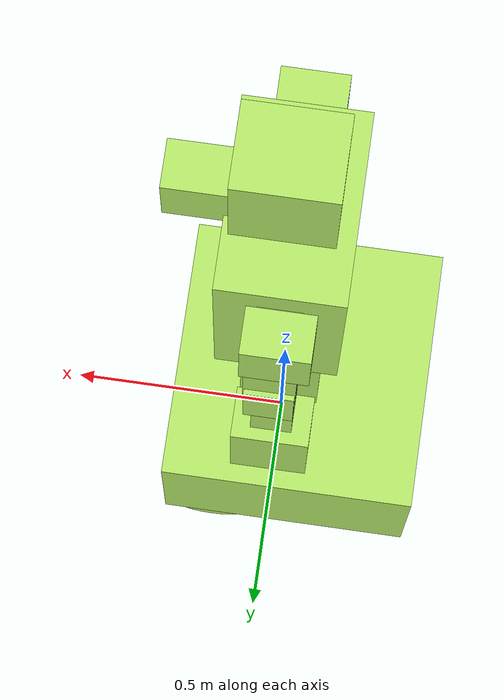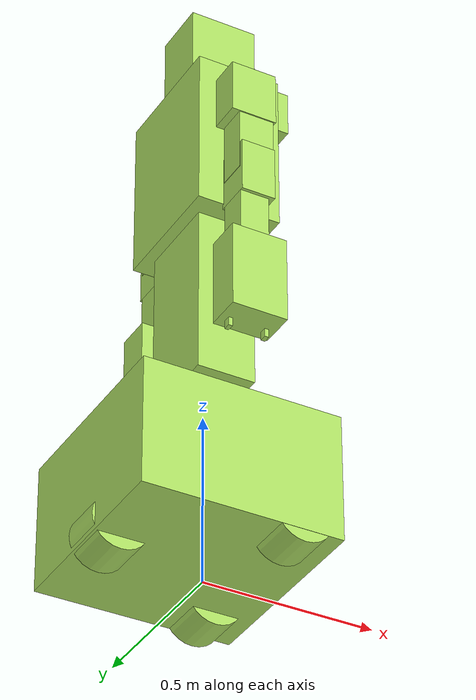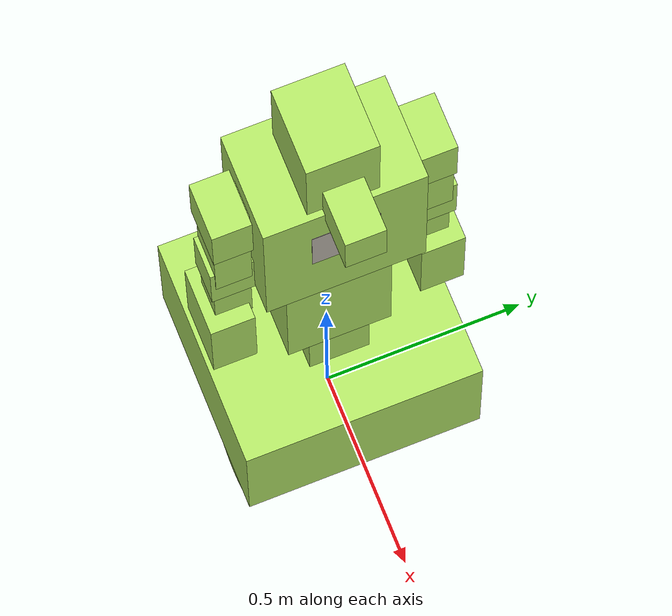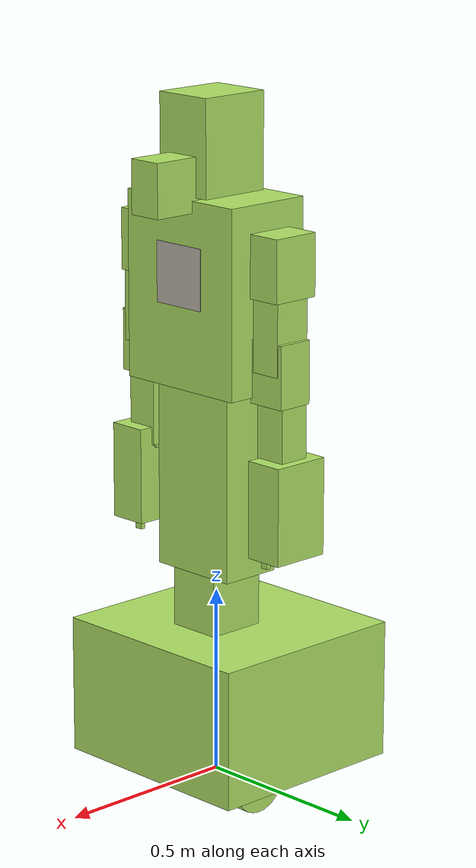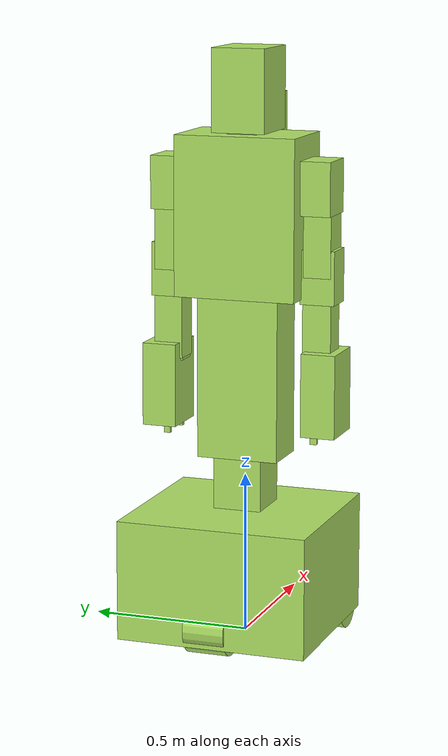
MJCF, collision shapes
<?xml version="1.0"?>
<!-- Generated by make_model.py from Rviz/src/franzi_description/urdf/wheel_robot_4.0.urdf - do not edit. -->
<mujoco model="franzi">
  <compiler angle="radian" balanceinertia="true" autolimits="true"
            texturedir="assets"
            meshdir="../../Rviz/src/franzi_description/meshes"/>
  <option timestep="0.002" integrator="implicitfast"/>

  <asset>
    <material name="franzi_white" rgba="0.85 0.86 0.88 1" specular="0.5"
              shininess="0.6"/>
    <material name="franzi_joint" rgba="0.09 0.095 0.105 1" specular="0.3"
              shininess="0.4"/>
    <material name="franzi_visor" rgba="0.02 0.02 0.025 1" specular="0.8"
              shininess="0.9"/>
    <material name="franzi_tire" rgba="0.04 0.04 0.045 1" specular="0.05"
              shininess="0.05"/>
    <texture name="fmc3_logo" type="cube" file="fmc3_logo.png"/>
    <material name="fmc3_logo" texture="fmc3_logo" specular="0.3"
              shininess="0.4"/>
    <mesh name="base_link" file="base_link.STL"/>
    <mesh name="calf_Link" file="calf_Link.STL"/>
    <mesh name="thigh_Link" file="thigh_Link.STL"/>
    <mesh name="waist_Link" file="waist_Link.STL"/>
    <mesh name="torso_Link" file="torso_Link.STL"/>
    <mesh name="head_yaw_Link" file="head_yaw_Link.STL"/>
    <mesh name="head_pitch_Link" file="head_pitch_Link.STL"/>
    <mesh name="head_d435_Link" file="head_d435_Link.STL"/>
    <mesh name="left_shoulder_pitch_Link" file="left_shoulder_pitch_Link.STL"/>
    <mesh name="left_shoulder_roll_Link" file="left_shoulder_roll_Link.STL"/>
    <mesh name="left_shoulder_yaw_Link" file="left_shoulder_yaw_Link.STL"/>
    <mesh name="left_elbow_pitch_Link" file="left_elbow_pitch_Link.STL"/>
    <mesh name="left_wrist_yaw_Link" file="left_wrist_yaw_Link.STL"/>
    <mesh name="left_wrist_pitch_Link" file="left_wrist_pitch_Link.STL"/>
    <mesh name="left_wrist_roll_Link" file="left_wrist_roll_Link.STL"/>
    <mesh name="leftfinger1_Link" file="leftfinger1_Link.STL"/>
    <mesh name="leftfinger2_Link" file="leftfinger2_Link.STL"/>
    <mesh name="left_wrist_d405_Link" file="left_wrist_d405_Link.STL"/>
    <mesh name="right_shoulder_pitch_Link" file="right_shoulder_pitch_Link.STL"/>
    <mesh name="right_shoulder_roll_Link" file="right_shoulder_roll_Link.STL"/>
    <mesh name="right_shoulder_yaw_Link" file="right_shoulder_yaw_Link.STL"/>
    <mesh name="right_elbow_pitch_Link" file="right_elbow_pitch_Link.STL"/>
    <mesh name="right_wrist_yaw_Link" file="right_wrist_yaw_Link.STL"/>
    <mesh name="right_wrist_pitch_Link" file="right_wrist_pitch_Link.STL"/>
    <mesh name="right_wrist_roll_Link" file="right_wrist_roll_Link.STL"/>
    <mesh name="rightfinger1_Link" file="rightfinger1_Link.STL"/>
    <mesh name="rightfinger2_Link" file="rightfinger2_Link.STL"/>
    <mesh name="right_wrist_d405_Link" file="right_wrist_d405_Link.STL"/>
    <mesh name="body_d435_Link" file="body_d435_Link.STL"/>
    <mesh name="left_front_steering_Link" file="left_front_steering_Link.STL"/>
    <mesh name="left_front_wheel_Link" file="left_front_wheel_Link.STL"/>
    <mesh name="right_front_steering_Link" file="right_front_steering_Link.STL"/>
    <mesh name="right_front_wheel_Link" file="right_front_wheel_Link.STL"/>
    <mesh name="rear_steering_Link" file="rear_steering_Link.STL"/>
    <mesh name="rear_wheel_Link" file="rear_wheel_Link.STL"/>
    <mesh name="MID360_Link" file="MID360_Link.STL"/>
    <mesh name="2Dlidar_Link" file="2Dlidar_Link.STL"/>
  </asset>

  <default>
    <default class="franzi">
      <geom contype="1" conaffinity="2" friction="0.9 0.005 0.0001"/>
      <joint damping="2" armature="0.1"/>
      <default class="visual">
        <geom contype="0" conaffinity="0" group="1"/>
      </default>
      <default class="collision">
        <geom group="3" rgba="0.7 0.9 0.4 0.4"/>
      </default>
      <default class="servo">
        <joint damping="5"/>
      </default>
      <default class="wheel">
        <joint damping="0.5" armature="0.02"/>
        <geom friction="1.2 0.01 0.0001" group="3" rgba="0.7 0.9 0.4 0.4"/>
      </default>
    </default>
  </default>

  <worldbody>
    <body name="base_link" pos="0 0 0.0872648" childclass="franzi">
      <freejoint name="base"/>
      <inertial pos="-0.039196 0.0031755 0.036044" mass="61.5" fullinertia="1.8193 1.3486 2.6901 0.042006 0.16837 0.024339"/>
      <geom name="base_link_visual" type="mesh" mesh="base_link" material="franzi_white" class="visual"/>
      <geom name="base_link" type="box" size="0.285523 0.297299 0.185476" pos="-0.0440142 9.08971e-06 0.132877" class="collision"/>
      <body name="calf_Link" pos="0 0 0.24785">
        <joint name="calf_pitch_joint" type="hinge" axis="0 1 0" range="-1.2566 0.52" class="servo"/>
        <inertial pos="-1.093e-05 0.0012888 0.15089" mass="16" fullinertia="0.28197 0.29762 0.084165 -1.89e-06 0.00024604 -7.346e-05"/>
        <geom name="calf_Link_visual" type="mesh" mesh="calf_Link" material="franzi_white" class="visual"/>
        <geom name="calf_Link" type="box" size="0.0815825 0.0750005 0.2245" pos="4.69387e-07 -3.241e-07 0.15" class="collision"/>
        <body name="thigh_Link" pos="0 0 0.3">
          <joint name="thigh_pitch_joint" type="hinge" axis="0 1 0" range="0 2.56" class="servo"/>
          <inertial pos="-0.0089016 0.0018681 0.18956" mass="11" fullinertia="0.24124 0.18696 0.11623 0.00021549 0.007479 0.0029216"/>
          <geom name="thigh_Link_visual" type="mesh" mesh="thigh_Link" material="franzi_white" class="visual"/>
          <geom name="thigh_Link" type="box" size="0.0847759 0.127575 0.2505" pos="0 0 0.18" class="collision"/>
          <body name="waist_Link" pos="0 0 0.35">
            <joint name="waist_pitch_joint" type="hinge" axis="0 1 0" range="-0.5235 0.5235" class="servo"/>
            <inertial pos="2.979e-05 -0.0027717 -0.0098953" mass="5" fullinertia="0.0180695 0.0231314 0.0212531 4.7e-07 8.65e-06 -0.00013516"/>
            <geom name="waist_Link_visual" type="mesh" mesh="waist_Link" material="franzi_joint" class="visual"/>
            <geom name="waist_Link" type="box" size="0.0805 0.069 0.0805" pos="1.2666e-07 0 0" class="collision"/>
            <body name="torso_Link" pos="0 0 0.0807">
              <joint name="waist_yaw_joint" type="hinge" axis="0 0 1" range="-3.14 3.14" class="servo"/>
              <inertial pos="0.01102 -2.3828e-05 0.25382" mass="18.35" fullinertia="0.70815 0.56957 0.34257 -9.08e-06 -0.030137 4.405e-05"/>
              <geom name="torso_Link_visual" type="mesh" mesh="torso_Link" material="franzi_white" class="visual"/>
              <geom name="torso_Link" type="box" size="0.124027 0.19 0.245607" pos="0.00530152 0 0.245607" class="collision"/>
              <geom name="chest_logo" type="box" size="0.0005 0.08 0.08" pos="0.131328 0 0.294728" material="fmc3_logo" class="visual"/>
              <body name="head_yaw_Link" pos="0 0 0.461">
                <joint name="head_yaw_joint" type="hinge" axis="0 0 1" range="-3.14 3.14" class="servo"/>
                <inertial pos="0.00036239 -0.0041487 0.043435" mass="0.35" fullinertia="0.00046072 0.00030358 0.00044763 3.5e-07 -6.1e-06 4.84e-06"/>
                <geom name="head_yaw_Link_visual" type="mesh" mesh="head_yaw_Link" material="franzi_joint" class="visual"/>
                <geom name="head_yaw_Link" type="box" size="0.145698 0.0474243 0.0702749" pos="0.0989599 0 0.0690749" class="collision"/>
                <body name="head_pitch_Link" pos="0 0 0.063">
                  <joint name="head_pitch_joint" type="hinge" axis="0 1 0" range="-0.5235 0.5235" class="servo"/>
                  <inertial pos="0.019983 -0.00029553 0.11286" mass="1.3" fullinertia="0.0093684 0.010546 0.0074017 8.59e-06 -0.00087158 4.178e-05"/>
                  <geom name="head_pitch_Link_visual" type="mesh" mesh="head_pitch_Link" material="franzi_visor" class="visual"/>
                  <geom name="head_pitch_Link" type="box" size="0.0997756 0.0835742 0.126485" pos="0.0161286 4.41819e-06 0.0994877" class="collision"/>
                  <site name="head_d435" pos="0.092208 0.0175 0.15141" quat="-0.573564 5.11576e-06 -0.819161 -5.11576e-06" size="0.005"/>
                  <geom name="head_d435_Link" type="mesh" mesh="head_d435_Link" pos="0.092208 0.0175 0.15141" quat="-0.573564 5.11576e-06 -0.819161 -5.11576e-06" material="franzi_joint" class="visual"/>
                </body>
              </body>
              <body name="left_shoulder_pitch_Link" pos="0 0.166 0.374">
                <joint name="left_shoulder_pitch_joint" type="hinge" axis="0 1 0" range="-3.489 2.617" class="servo"/>
                <inertial pos="0.0012801 0.062463 1.5281e-06" mass="1.56" fullinertia="0.0019971 0.0015122 0.0020202 2.095e-05 0 -3e-08"/>
                <geom name="left_shoulder_pitch_Link_visual" type="mesh" mesh="left_shoulder_pitch_Link" material="franzi_joint" class="visual"/>
                <geom name="left_shoulder_pitch_Link" type="box" size="0.04415 0.0592027 0.0444214" pos="0.00414999 0.0577027 2.92789e-05" class="collision"/>
                <body name="left_shoulder_roll_Link" pos="0 0.0725 0">
                  <joint name="left_shoulder_roll_joint" type="hinge" axis="1 0 0" range="-0.52 3.14" class="servo"/>
                  <inertial pos="0.0066589 0.00556 -0.0599" mass="1.6" fullinertia="0.0037226 0.0051554 0.0028701 -5.28e-05 0.0007199 -0.00012249"/>
                  <geom name="left_shoulder_roll_Link_visual" type="mesh" mesh="left_shoulder_roll_Link" material="franzi_white" class="visual"/>
                  <geom name="left_shoulder_roll_Link" type="box" size="0.0675 0.0465209 0.0817977" pos="1.2666e-07 -1.7643e-05 -0.0353029" class="collision"/>
                  <body name="left_shoulder_yaw_Link" pos="0 0 -0.118">
                    <joint name="left_shoulder_yaw_joint" type="hinge" axis="0 0 1" range="-2.97 2.97" class="servo"/>
                    <inertial pos="0.0052548 2.5172e-06 -0.086479" mass="1.43" fullinertia="0.0048123 0.004981 0.0013655 -7e-08 -0.00057088 -8.4e-07"/>
                    <geom name="left_shoulder_yaw_Link_visual" type="mesh" mesh="left_shoulder_yaw_Link" material="franzi_white" class="visual"/>
                    <geom name="left_shoulder_yaw_Link" type="box" size="0.0519966 0.042987 0.09975" pos="0.00800335 1.78814e-07 -0.08825" class="collision"/>
                    <body name="left_elbow_pitch_Link" pos="0.017 0 -0.145">
                      <joint name="left_elbow_pitch_joint" type="hinge" axis="0 1 0" range="-2.62 0.13" class="servo"/>
                      <inertial pos="-0.01882 0.0031393 -0.06158" mass="1.54" fullinertia="0.0029625 0.0026547 0.0017735 9.505e-05 8.653e-05 0.00029065"/>
                      <geom name="left_elbow_pitch_Link_visual" type="mesh" mesh="left_elbow_pitch_Link" material="franzi_joint" class="visual"/>
                      <geom name="left_elbow_pitch_Link" type="box" size="0.0500196 0.054 0.0827567" pos="-0.00950617 0 -0.0422433" class="collision"/>
                      <body name="left_wrist_yaw_Link" pos="-0.017 0 -0.1262">
                        <joint name="left_wrist_yaw_joint" type="hinge" axis="0 0 1" range="-2.97 2.97" class="servo"/>
                        <inertial pos="-2.128e-06 -3.3632e-05 -0.056468" mass="1" fullinertia="0.0025948 0.002418 0.00097841 -6e-08 -9.2e-07 -9.49e-06"/>
                        <geom name="left_wrist_yaw_Link_visual" type="mesh" mesh="left_wrist_yaw_Link" material="franzi_white" class="visual"/>
                        <geom name="left_wrist_yaw_Link" type="box" size="0.0425251 0.0444976 0.102382" pos="-1.45286e-07 -0.000138914 -0.0876818" class="collision"/>
                        <body name="left_wrist_pitch_Link" pos="0 0 -0.1658">
                          <joint name="left_wrist_pitch_joint" type="hinge" axis="0 1 0" range="-1.05 1.05" class="servo"/>
                          <inertial pos="-0.0010026 -0.0011829 0.011382" mass="0.76" fullinertia="0.00067253 0.00068203 0.00046634 -1e-07 8.3e-06 -2.45e-06"/>
                          <geom name="left_wrist_pitch_Link_visual" type="mesh" mesh="left_wrist_pitch_Link" material="franzi_white" class="visual"/>
                          <geom name="left_wrist_pitch_Link" type="box" size="0.0325 0.03965 0.0452421" pos="7.45058e-09 -0.00335 0.0127441" class="collision"/>
                          <body name="left_wrist_roll_Link" pos="0.0303 0 0">
                            <joint name="left_wrist_roll_joint" type="hinge" axis="1 0 0" range="-1.57 1.57" class="servo"/>
                            <inertial pos="-0.021687 0.0031118 -0.1166" mass="1.5" fullinertia="0.0080361 0.0097606 0.0028412 -3.988e-05 0.00119 0.00010473"/>
                            <geom name="left_wrist_roll_Link_visual" type="mesh" mesh="left_wrist_roll_Link" material="franzi_joint" class="visual"/>
                            <geom name="left_wrist_roll_Link" type="box" size="0.0811732 0.0535143 0.12852" pos="-0.03045 0.0167103 -0.10502" class="collision"/>
                            <body name="leftfinger1_Link" pos="-0.07795 -0.005 -0.22904">
                              <joint name="leftfinger1_joint" type="slide" axis="1 0 0" range="0 0.0475" class="servo"/>
                              <inertial pos="-0.0047305 0.00325 -0.011991" mass="0.1" fullinertia="1.104e-05 8.66e-06 4.22e-06 0 -5e-08 0"/>
                              <geom name="leftfinger1_Link_visual" type="mesh" mesh="leftfinger1_Link" material="franzi_joint" class="visual"/>
                              <geom name="leftfinger1_Link" type="box" size="0.006 0.0105 0.017" pos="-0.006 0.00325 -0.0124" class="collision"/>
                            </body>
                            <body name="leftfinger2_Link" pos="0.01705 -0.005 -0.22904">
                              <joint name="leftfinger2_joint" type="slide" axis="1 0 0" range="-0.0475 0" class="servo"/>
                              <inertial pos="0.0047305 0.00325 -0.011991" mass="0.1" fullinertia="1.104e-05 8.66e-06 4.22e-06 0 5e-08 0"/>
                              <geom name="leftfinger2_Link_visual" type="mesh" mesh="leftfinger2_Link" material="franzi_joint" class="visual"/>
                              <geom name="leftfinger2_Link" type="box" size="0.006 0.0105 0.017" pos="0.006 0.00325 -0.0124" class="collision"/>
                            </body>
                            <site name="left_wrist_d405" pos="-0.0301 0.057975 -0.13418" quat="-3.67321e-06 1 0 -0" size="0.005"/>
                            <geom name="left_wrist_d405_Link" type="mesh" mesh="left_wrist_d405_Link" pos="-0.0301 0.057975 -0.13418" quat="-3.67321e-06 1 0 -0" material="franzi_joint" class="visual"/>
                          </body>
                        </body>
                      </body>
                    </body>
                  </body>
                </body>
              </body>
              <body name="right_shoulder_pitch_Link" pos="0 -0.166 0.374">
                <joint name="right_shoulder_pitch_joint" type="hinge" axis="0 1 0" range="-3.489 2.617" class="servo"/>
                <inertial pos="0.0012796 -0.062462 1.35e-06" mass="1.56" fullinertia="0.0019972 0.0015122 0.0020202 -2.098e-05 2e-08 0"/>
                <geom name="right_shoulder_pitch_Link_visual" type="mesh" mesh="right_shoulder_pitch_Link" material="franzi_joint" class="visual"/>
                <geom name="right_shoulder_pitch_Link" type="box" size="0.04415 0.0592027 0.0444214" pos="0.00414999 -0.0577027 2.92789e-05" class="collision"/>
                <body name="right_shoulder_roll_Link" pos="0 -0.0725 0">
                  <joint name="right_shoulder_roll_joint" type="hinge" axis="1 0 0" range="-3.14 0.52" class="servo"/>
                  <inertial pos="0.0066625 -0.0055601 -0.059897" mass="1.6" fullinertia="0.00372242 0.00515511 0.00287017 5.255e-05 0.00072008 0.00012259"/>
                  <geom name="right_shoulder_roll_Link_visual" type="mesh" mesh="right_shoulder_roll_Link" material="franzi_white" class="visual"/>
                  <geom name="right_shoulder_roll_Link" type="box" size="0.0675 0.0465209 0.0817979" pos="6.70552e-08 1.7643e-05 -0.0353027" class="collision"/>
                  <body name="right_shoulder_yaw_Link" pos="0 0 -0.118">
                    <joint name="right_shoulder_yaw_joint" type="hinge" axis="0 0 1" range="-2.97 2.97" class="servo"/>
                    <inertial pos="0.0052547 -2.5343e-06 -0.086479" mass="1.43" fullinertia="0.00481227 0.00498095 0.00136551 5e-08 -0.00057088 8.2e-07"/>
                    <geom name="right_shoulder_yaw_Link_visual" type="mesh" mesh="right_shoulder_yaw_Link" material="franzi_white" class="visual"/>
                    <geom name="right_shoulder_yaw_Link" type="box" size="0.0519973 0.042987 0.09975" pos="0.00800273 -1.78814e-07 -0.08825" class="collision"/>
                    <body name="right_elbow_pitch_Link" pos="0.017 0 -0.145">
                      <joint name="right_elbow_pitch_joint" type="hinge" axis="0 1 0" range="-2.62 0.13" class="servo"/>
                      <inertial pos="-0.018819 -0.0031387 -0.061581" mass="1.54" fullinertia="0.0029626 0.0026547 0.0017735 -9.505e-05 8.652e-05 -0.00029061"/>
                      <geom name="right_elbow_pitch_Link_visual" type="mesh" mesh="right_elbow_pitch_Link" material="franzi_joint" class="visual"/>
                      <geom name="right_elbow_pitch_Link" type="box" size="0.0500196 0.054 0.0827567" pos="-0.0095061 0 -0.0422433" class="collision"/>
                      <body name="right_wrist_yaw_Link" pos="-0.017 0 -0.1262">
                        <joint name="right_wrist_yaw_joint" type="hinge" axis="0 0 1" range="-2.97 2.97" class="servo"/>
                        <inertial pos="-2.77e-06 3.303e-05 -0.056465" mass="1" fullinertia="0.0025947 0.002418 0.00097842 5e-08 -9.3e-07 9.48e-06"/>
                        <geom name="right_wrist_yaw_Link_visual" type="mesh" mesh="right_wrist_yaw_Link" material="franzi_white" class="visual"/>
                        <geom name="right_wrist_yaw_Link" type="box" size="0.042525 0.0444976 0.102382" pos="-1.52737e-07 0.000138912 -0.0876818" class="collision"/>
                        <body name="right_wrist_pitch_Link" pos="0 0 -0.1658">
                          <joint name="right_wrist_pitch_joint" type="hinge" axis="0 1 0" range="-1.05 1.05" class="servo"/>
                          <inertial pos="-0.0010025 0.0011828 0.011382" mass="0.76" fullinertia="0.00067253 0.00068203 0.00046634 1e-07 8.3e-06 2.44e-06"/>
                          <geom name="right_wrist_pitch_Link_visual" type="mesh" mesh="right_wrist_pitch_Link" material="franzi_white" class="visual"/>
                          <geom name="right_wrist_pitch_Link" type="box" size="0.0325 0.03965 0.0452421" pos="7.45058e-09 0.00335 0.0127441" class="collision"/>
                          <body name="right_wrist_roll_Link" pos="0.0303 0 0">
                            <joint name="right_wrist_roll_joint" type="hinge" axis="1 0 0" range="-1.57 1.57" class="servo"/>
                            <inertial pos="-0.023095 -0.012295 -0.11762" mass="1.5" fullinertia="0.0011746 0.0013054 0.00049085 2.066e-05 0.00015951 -2.74e-06"/>
                            <geom name="right_wrist_roll_Link_visual" type="mesh" mesh="right_wrist_roll_Link" material="franzi_joint" class="visual"/>
                            <geom name="right_wrist_roll_Link" type="box" size="0.0811732 0.0535143 0.12852" pos="-0.03045 -0.0167103 -0.10502" class="collision"/>
                            <body name="rightfinger1_Link" pos="-0.07795 0.005 -0.22904">
                              <joint name="rightfinger1_joint" type="slide" axis="1 0 0" range="0 0.0475" class="servo"/>
                              <inertial pos="-0.0047305 -0.00325 -0.011991" mass="0.1" fullinertia="1.104e-05 8.66e-06 4.22e-06 0 -5e-08 0"/>
                              <geom name="rightfinger1_Link_visual" type="mesh" mesh="rightfinger1_Link" material="franzi_joint" class="visual"/>
                              <geom name="rightfinger1_Link" type="box" size="0.006 0.0105 0.017" pos="-0.006 -0.00325 -0.0124" class="collision"/>
                            </body>
                            <body name="rightfinger2_Link" pos="0.01705 0.005 -0.22904">
                              <joint name="rightfinger2_joint" type="slide" axis="1 0 0" range="-0.0475 0" class="servo"/>
                              <inertial pos="0.0047305 -0.00325 -0.011991" mass="0.1" fullinertia="1.104e-05 8.66e-06 4.22e-06 0 5e-08 0"/>
                              <geom name="rightfinger2_Link_visual" type="mesh" mesh="rightfinger2_Link" material="franzi_joint" class="visual"/>
                              <geom name="rightfinger2_Link" type="box" size="0.006 0.0105 0.017" pos="0.006 -0.00325 -0.0124" class="collision"/>
                            </body>
                            <site name="right_wrist_d405" pos="-0.0301 -0.057975 -0.13418" quat="-3.67321e-06 1 0 -0" size="0.005"/>
                            <geom name="right_wrist_d405_Link" type="mesh" mesh="right_wrist_d405_Link" pos="-0.0301 -0.057975 -0.13418" quat="-3.67321e-06 1 0 -0" material="franzi_joint" class="visual"/>
                          </body>
                        </body>
                      </body>
                    </body>
                  </body>
                </body>
              </body>
              <site name="body_d435" pos="0.10174 0.0175 0.23507" quat="0.421991 -1.78007e-06 0.9066 -1.78007e-06" size="0.005"/>
              <geom name="body_d435_Link" type="mesh" mesh="body_d435_Link" pos="0.10174 0.0175 0.23507" quat="0.421991 -1.78007e-06 0.9066 -1.78007e-06" material="franzi_joint" class="visual"/>
            </body>
          </body>
        </body>
      </body>
      <body name="left_front_steering_Link" pos="0.13 0.213 0.1114">
        <joint name="left_front_steering_joint" type="hinge" axis="0 0 1" range="-3.14 3.14" class="servo"/>
        <inertial pos="0 0.024717 -0.037742" mass="1.32" fullinertia="0.003547 0.0031556 0.0022099 0 0 -0.0010889"/>
        <geom name="left_front_steering_Link_visual" type="mesh" mesh="left_front_steering_Link" material="franzi_joint" class="visual"/>
        <geom name="left_front_steering_Link" type="box" size="0.04 0.051 0.0705" pos="0 0.00600001 -0.0655" class="collision"/>
        <body name="left_front_wheel_Link" pos="0 0 -0.116">
          <joint name="left_front_wheel_joint" type="hinge" axis="0 1 0" class="wheel"/>
          <inertial pos="4.7e-06 -0.0012211 1.11e-06" mass="4.85" fullinertia="0.011629 0.017191 0.011629 8.8e-07 -3e-08 2.1e-07"/>
          <geom name="left_front_wheel_Link_visual" type="mesh" mesh="left_front_wheel_Link" material="franzi_tire" class="visual"/>
          <geom name="left_front_wheel_Link" type="cylinder" size="0.0826648 0.06475" pos="0 0.01875 0" quat="0.707107 0.707107 0 0" class="wheel"/>
        </body>
      </body>
      <body name="right_front_steering_Link" pos="0.13 -0.213 0.1114">
        <joint name="right_front_steering_joint" type="hinge" axis="0 0 1" range="-3.14 3.14" class="servo"/>
        <inertial pos="0 -0.024718 -0.037742" mass="1.32" fullinertia="0.003547 0.0031556 0.0022099 0 0 0.0010889"/>
        <geom name="right_front_steering_Link_visual" type="mesh" mesh="right_front_steering_Link" material="franzi_joint" class="visual"/>
        <geom name="right_front_steering_Link" type="box" size="0.04 0.051 0.0705" pos="0 -0.00600001 -0.0655" class="collision"/>
        <body name="right_front_wheel_Link" pos="0 0 -0.116">
          <joint name="right_front_wheel_joint" type="hinge" axis="0 1 0" class="wheel"/>
          <inertial pos="0 0.0012211 4.8271e-06" mass="4.85" fullinertia="0.011629 0.017191 0.011629 -2e-08 -3e-08 -9.1e-07"/>
          <geom name="right_front_wheel_Link_visual" type="mesh" mesh="right_front_wheel_Link" material="franzi_tire" class="visual"/>
          <geom name="right_front_wheel_Link" type="cylinder" size="0.0826656 0.06475" pos="0 -0.01875 0" quat="0.707107 0.707107 0 0" class="wheel"/>
        </body>
      </body>
      <body name="rear_steering_Link" pos="-0.255 0 0.1054">
        <joint name="rear_steering_joint" type="hinge" axis="0 0 1" range="-3.14 3.14" class="servo"/>
        <inertial pos="6.6536e-09 0.024108 -0.035583" mass="1.32" fullinertia="0.0033137 0.0029204 0.0022176 0 0 -0.0010295"/>
        <geom name="rear_steering_Link_visual" type="mesh" mesh="rear_steering_Link" material="franzi_joint" class="visual"/>
        <geom name="rear_steering_Link" type="box" size="0.04 0.051 0.0675001" pos="0 0.006 -0.0625001" class="collision"/>
        <body name="rear_wheel_Link" pos="0 0 -0.11">
          <joint name="rear_wheel_joint" type="hinge" axis="0 1 0" class="wheel"/>
          <inertial pos="4.83e-06 -0.0012211 0" mass="4.85" fullinertia="0.011629 0.017191 0.011629 9.1e-07 -3e-08 0"/>
          <geom name="rear_wheel_Link_visual" type="mesh" mesh="rear_wheel_Link" material="franzi_tire" class="visual"/>
          <geom name="rear_wheel_Link" type="cylinder" size="0.0826596 0.06475" pos="0 0.01875 3.72529e-09" quat="0.707107 0.707107 0 0" class="wheel"/>
        </body>
      </body>
      <site name="MID360" pos="0.0765 0.1954 0.24623" quat="1 0 0 0" size="0.005"/>
      <geom name="MID360_Link" type="mesh" mesh="MID360_Link" pos="0.0765 0.1954 0.24623" quat="1 0 0 0" material="franzi_joint" class="visual"/>
      <site name="2Dlidar" pos="-0.22 -0.19 0.2474" quat="1 0 0 0" size="0.005"/>
      <geom name="2Dlidar_Link" type="mesh" mesh="2Dlidar_Link" pos="-0.22 -0.19 0.2474" quat="1 0 0 0" material="franzi_joint" class="visual"/>
    </body>
  </worldbody>

  <actuator>
    <position name="calf_pitch_joint" joint="calf_pitch_joint" kp="6000" ctrlrange="-1.2566 0.52" forcerange="-800 800"/>
    <position name="thigh_pitch_joint" joint="thigh_pitch_joint" kp="6000" ctrlrange="0 2.56" forcerange="-800 800"/>
    <position name="waist_pitch_joint" joint="waist_pitch_joint" kp="6000" ctrlrange="-0.5235 0.5235" forcerange="-800 800"/>
    <position name="waist_yaw_joint" joint="waist_yaw_joint" kp="6000" ctrlrange="-3.14 3.14" forcerange="-800 800"/>
    <position name="head_yaw_joint" joint="head_yaw_joint" kp="400" ctrlrange="-3.14 3.14" forcerange="-100 100"/>
    <position name="head_pitch_joint" joint="head_pitch_joint" kp="400" ctrlrange="-0.5235 0.5235" forcerange="-100 100"/>
    <position name="left_shoulder_pitch_joint" joint="left_shoulder_pitch_joint" kp="1500" ctrlrange="-3.489 2.617" forcerange="-100 100"/>
    <position name="left_shoulder_roll_joint" joint="left_shoulder_roll_joint" kp="1500" ctrlrange="-0.52 3.14" forcerange="-100 100"/>
    <position name="left_shoulder_yaw_joint" joint="left_shoulder_yaw_joint" kp="1500" ctrlrange="-2.97 2.97" forcerange="-100 100"/>
    <position name="left_elbow_pitch_joint" joint="left_elbow_pitch_joint" kp="1500" ctrlrange="-2.62 0.13" forcerange="-100 100"/>
    <position name="left_wrist_yaw_joint" joint="left_wrist_yaw_joint" kp="400" ctrlrange="-2.97 2.97" forcerange="-100 100"/>
    <position name="left_wrist_pitch_joint" joint="left_wrist_pitch_joint" kp="400" ctrlrange="-1.05 1.05" forcerange="-100 100"/>
    <position name="left_wrist_roll_joint" joint="left_wrist_roll_joint" kp="400" ctrlrange="-1.57 1.57" forcerange="-100 100"/>
    <position name="leftfinger1_joint" joint="leftfinger1_joint" kp="2000" ctrlrange="0 0.0475" forcerange="-100 100"/>
    <position name="leftfinger2_joint" joint="leftfinger2_joint" kp="2000" ctrlrange="-0.0475 0" forcerange="-100 100"/>
    <position name="right_shoulder_pitch_joint" joint="right_shoulder_pitch_joint" kp="1500" ctrlrange="-3.489 2.617" forcerange="-100 100"/>
    <position name="right_shoulder_roll_joint" joint="right_shoulder_roll_joint" kp="1500" ctrlrange="-3.14 0.52" forcerange="-100 100"/>
    <position name="right_shoulder_yaw_joint" joint="right_shoulder_yaw_joint" kp="1500" ctrlrange="-2.97 2.97" forcerange="-100 100"/>
    <position name="right_elbow_pitch_joint" joint="right_elbow_pitch_joint" kp="1500" ctrlrange="-2.62 0.13" forcerange="-100 100"/>
    <position name="right_wrist_yaw_joint" joint="right_wrist_yaw_joint" kp="400" ctrlrange="-2.97 2.97" forcerange="-100 100"/>
    <position name="right_wrist_pitch_joint" joint="right_wrist_pitch_joint" kp="400" ctrlrange="-1.05 1.05" forcerange="-100 100"/>
    <position name="right_wrist_roll_joint" joint="right_wrist_roll_joint" kp="400" ctrlrange="-1.57 1.57" forcerange="-100 100"/>
    <position name="rightfinger1_joint" joint="rightfinger1_joint" kp="2000" ctrlrange="0 0.0475" forcerange="-100 100"/>
    <position name="rightfinger2_joint" joint="rightfinger2_joint" kp="2000" ctrlrange="-0.0475 0" forcerange="-100 100"/>
    <position name="left_front_steering_joint" joint="left_front_steering_joint" kp="400" ctrlrange="-3.14 3.14" forcerange="-100 100"/>
    <velocity name="left_front_wheel_joint" joint="left_front_wheel_joint" kv="20" ctrlrange="-1000 1000" forcerange="-100 100"/>
    <position name="right_front_steering_joint" joint="right_front_steering_joint" kp="400" ctrlrange="-3.14 3.14" forcerange="-100 100"/>
    <velocity name="right_front_wheel_joint" joint="right_front_wheel_joint" kv="20" ctrlrange="-1000 1000" forcerange="-100 100"/>
    <position name="rear_steering_joint" joint="rear_steering_joint" kp="400" ctrlrange="-3.14 3.14" forcerange="-100 100"/>
    <velocity name="rear_wheel_joint" joint="rear_wheel_joint" kv="20" ctrlrange="-1000 1000" forcerange="-100 100"/>
  </actuator>

  <keyframe>
    <key name="home" qpos="0 0 0.0872648 1 0 0 0 0 0 0 0 0 0 0 0 0 0 0 0 0 0 0 0 0 0 0 0 0 0 0 0 0 0 0 0 0 0" ctrl="0 0 0 0 0 0 0 0 0 0 0 0 0 0 0 0 0 0 0 0 0 0 0 0 0 0 0 0 0 0"/>
  </keyframe>
</mujoco>
